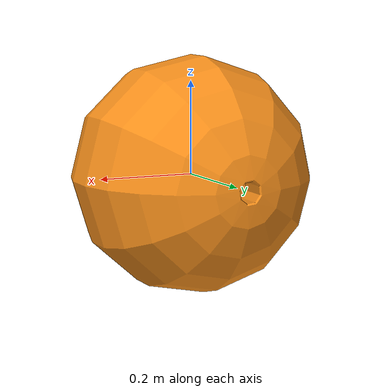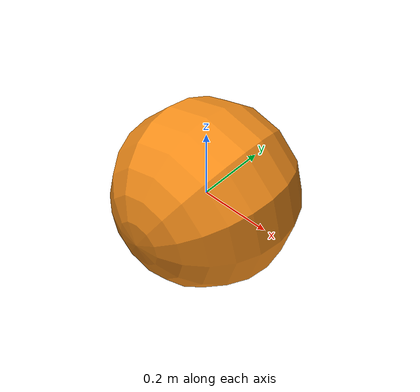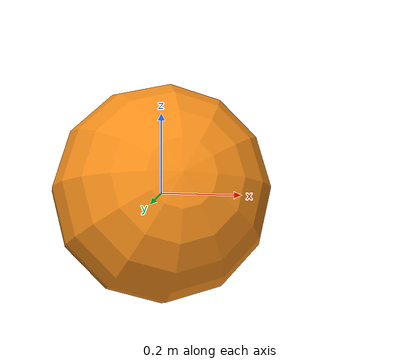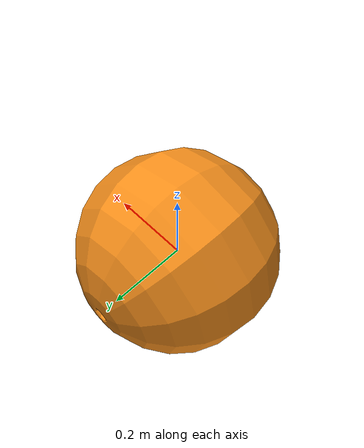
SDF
<?xml version="1.0" ?>
<sdf version="1.6">
  <model name="mb_round_buoy_orange">
    <link name="link">
      <inertial>
        <pose>0 0 -2 0 0 0</pose>
        <!-- Mass determined based on buoyancy geometry so object
             floats at mid-point of sphere -->
        <mass>3.5</mass>
        <!-- Mark only - based on cylinder -->
        <inertia>
          <ixx>1.0</ixx>
          <ixy>0</ixy>
          <ixz>0</ixz>
          <iyy>1.0</iyy>
          <iyz>0</iyz>
          <izz>0.1</izz>
        </inertia>
      </inertial>
      <collision name="collision">
        <geometry>
          <sphere>
            <radius>0.25</radius>
          </sphere>
        </geometry>
      </collision>
      <visual name="visual">
        <geometry>
	        <mesh><uri>model://mb_round_buoy_orange/meshes/mb_round_buoy.dae</uri></mesh>
        </geometry>
        <material>
          <script>
            <uri>model://mb_round_buoy_orange/materials/scripts/mb_round_buoy.material</uri>
            <name>mb_round_buoy/Orange</name>
          </script>
        </material>
      </visual>
    </link>
    <plugin name="BuoyancyPlugin" filename="libbuoyancy_gazebo_plugin.so">
      <wave_model>ocean_waves</wave_model>
      <fluid_density>1000</fluid_density>
      <fluid_level>0.0</fluid_level>
      <linear_drag>25.0</linear_drag>
      <angular_drag>2.0</angular_drag>
      <buoyancy name="buoyancy_sphere">
        <link_name>link</link_name>
        <pose>0 0 0.02 0 0 0</pose>
        <geometry>
          <sphere>
            <radius>0.235</radius>
          </sphere>
        </geometry>
      </buoyancy>
    </plugin>
  </model>
</sdf>
